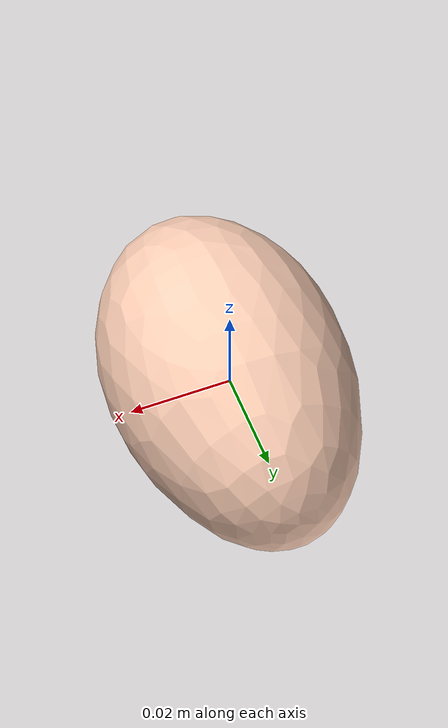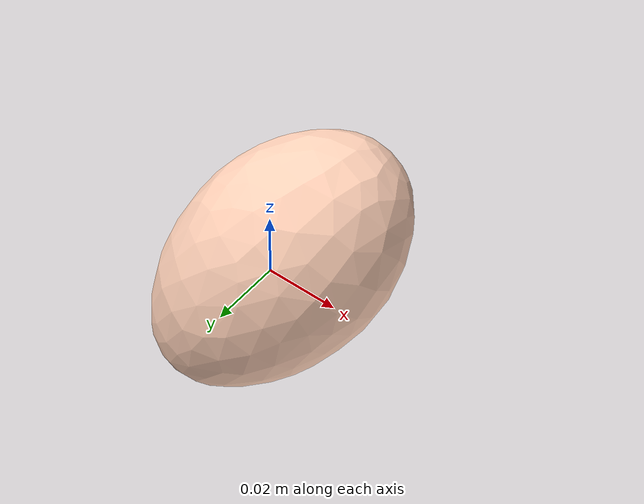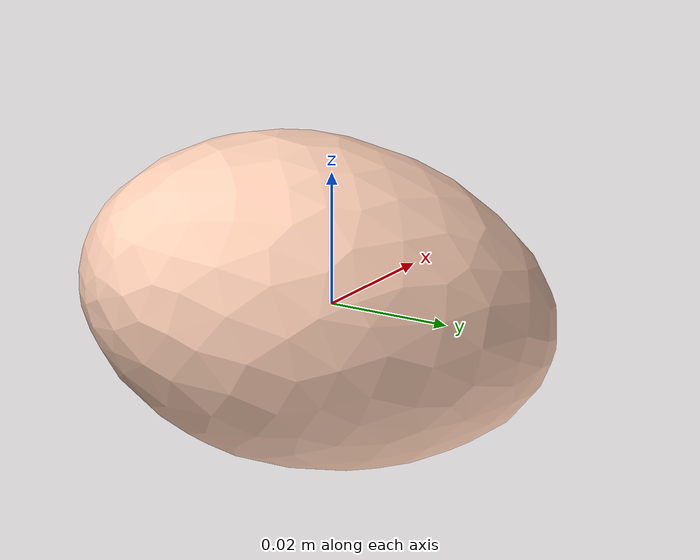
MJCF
<mujoco model="Egg_26">
  <compiler autolimits="true" boundmass="0.01" angle="radian"/>
  <default>
    <default class="/">
      <default class="__VISUAL_MJT__">
        <geom contype="0" conaffinity="0" group="0"/>
      </default>
      <default class="__STRUCTURAL_MJT__">
        <geom contype="8" conaffinity="15" group="4" friction="0.90000000000000002 0.90000000000000002 0.001" solref="0.025000000000000001 1" solimp="0.998 0.998 0.001"/>
      </default>
      <default class="__DYNAMIC_MJT__">
        <geom contype="1" conaffinity="15" group="4" friction="0.90000000000000002 0.90000000000000002 0.001" solref="0.025000000000000001 1" solimp="0.998 0.998 0.001"/>
      </default>
    </default>
  </default>
  <asset>
    <material name="material_Egg2_Mat" class="/" specular="0.5" shininess="0.5" rgba="1 0.81973430000000003 0.72058820000000001 1"/>
    <mesh name="Egg_26_egg_26" class="/" file="Egg_26_egg_26/Egg_26_egg_26.obj" scale="1 1 1"/>
  </asset>
  <worldbody>
    <body name="Egg_26">
      <joint name="Egg_26_free" class="/" type="free" pos="0 0 0" axis="0 0 1" stiffness="0" range="0 0" armature="0" damping="0.10000000000000001" frictionloss="0"/>
      <body name="Egg_26_egg_26" pos="-0.00012999999999999999 0 -8.0000000000000007e-05" quat="1 0 0 0">
        <geom name="Egg_26_egg_26" class="__VISUAL_MJT__" type="mesh" material="material_Egg2_Mat" shellinertia="true" mesh="Egg_26_egg_26"/>
        <geom name="Egg_26_PrimitiveCollider_0" class="__DYNAMIC_MJT__" type="capsule" size="0.021470502018928528 0.014516867697238922" rgba="0 1 0 1" pos="-0 0 0" quat="0.70710678118654757 0.70710678118654746 0 0"/>
      </body>
    </body>
  </worldbody>
</mujoco>
